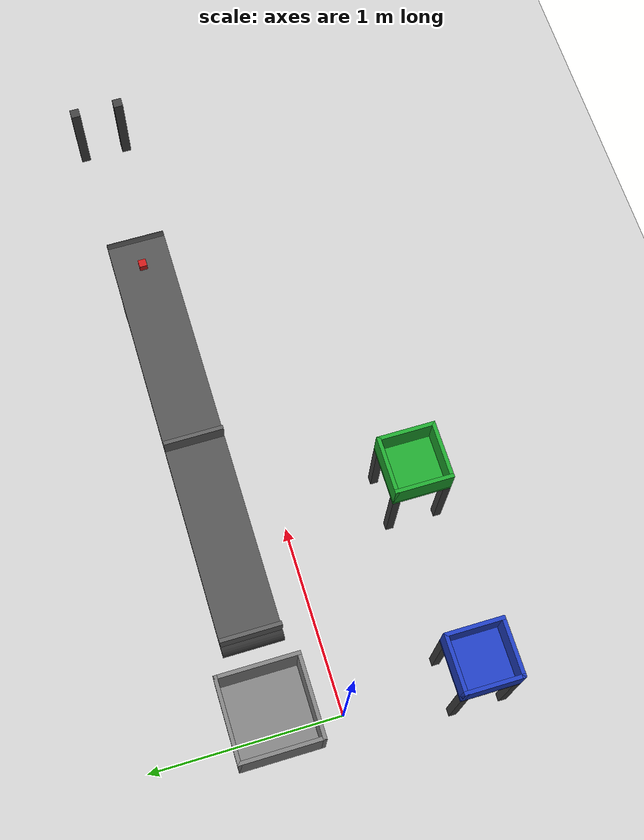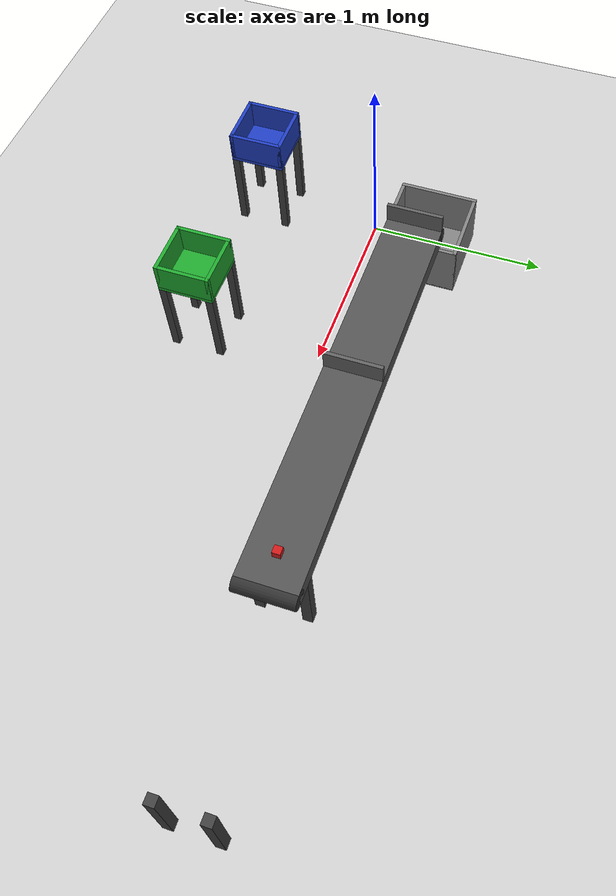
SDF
<?xml version="1.0" ?>
<sdf version="1.8">
  <world name="sorting_cell">
    <physics name="1ms" type="ignition.physics.sim" default="true">
      <max_step_size>0.001</max_step_size>
      <real_time_factor>1.0</real_time_factor>
    </physics>
    <plugin filename="gz-sim-physics-system" name="gz::sim::systems::Physics">
      <gravity>0 0 -9.81</gravity>
    </plugin>
    <plugin filename="gz-sim-scene-broadcaster-system" name="gz::sim::systems::SceneBroadcaster"/>
    <plugin filename="gz-sim-user-commands-system" name="gz::sim::systems::UserCommands"/>
    <plugin filename="gz-sim-contact-system" name="gz::sim::systems::Contact"/>
    <!-- Renders camera sensors. Without this, camera sensors produce no image. -->
    <plugin filename="gz-sim-sensors-system" name="gz::sim::systems::Sensors">
      <render_engine>ogre2</render_engine>
    </plugin>
    <scene>
      <ambient>1.0 1.0 1.0</ambient>
      <background>0.8 0.8 0.8</background>
      <grid>true</grid>
    </scene>
    <light type="directional" name="sun">
      <cast_shadows>true</cast_shadows>
      <pose>0 0 10 0 0 0</pose>
      <diffuse>0.8 0.8 0.8 1</diffuse>
      <specular>0.2 0.2 0.2 1</specular>
      <direction>-0.5 0.1 -0.9</direction>
    </light>
    <model name="ground_plane">
      <static>true</static>
      <link name="link">
        <collision name="collision">
          <geometry><plane><normal>0 0 1</normal><size>100 100</size></plane></geometry>
        </collision>
        <visual name="visual">
          <geometry><plane><normal>0 0 1</normal><size>100 100</size></plane></geometry>
          <material><ambient>0.8 0.8 0.8 1</ambient><diffuse>0.8 0.8 0.8 1</diffuse></material>
        </visual>
      </link>
    </model>

    <model name="belt_track">
      <pose>1.475 0.35 0 0 0 0</pose>
      <static>1</static>
      <link name="base_link">
        <pose>0 0 0.50 0 0 0</pose>
        <collision name="belt_col">
          <geometry><box><size>2.15 0.30 0.10</size></box></geometry>
          <surface><friction><ode><mu>0.7</mu><mu2>150</mu2><fdir1>0 1 0</fdir1></ode></friction></surface>
        </collision>
        <visual name="belt_vis">
          <geometry><box><size>2.15 0.30 0.10</size></box></geometry>
          <!-- Neutral gray (low saturation) so the overhead color cameras only see saturated
               pixels on the workpiece, never the belt. -->
          <material><ambient>0.3 0.3 0.3 1</ambient><diffuse>0.32 0.32 0.32 1</diffuse></material>
        </visual>
        <collision name="roll_a_col">
          <pose>1.075 0 0 -1.5708 0 0</pose>
          <geometry><cylinder><length>0.30</length><radius>0.05</radius></cylinder></geometry>
        </collision>
        <visual name="roll_a_vis">
          <pose>1.075 0 0 -1.5708 0 0</pose>
          <geometry><cylinder><length>0.30</length><radius>0.05</radius></cylinder></geometry>
          <material><ambient>0.2 0.2 0.2 1</ambient><diffuse>0.2 0.2 0.2 1</diffuse></material>
        </visual>
        <collision name="roll_b_col">
          <pose>-1.075 0 0 -1.5708 0 0</pose>
          <geometry><cylinder><length>0.30</length><radius>0.05</radius></cylinder></geometry>
        </collision>
        <visual name="roll_b_vis">
          <pose>-1.075 0 0 -1.5708 0 0</pose>
          <geometry><cylinder><length>0.30</length><radius>0.05</radius></cylinder></geometry>
          <material><ambient>0.2 0.2 0.2 1</ambient><diffuse>0.2 0.2 0.2 1</diffuse></material>
        </visual>
      </link>
      <link name="leg_1"><pose>0.95 0.12 0.225 0 0 0</pose><visual name="v"><geometry><box><size>0.05 0.05 0.45</size></box></geometry><material><ambient>0.25 0.25 0.25 1</ambient><diffuse>0.25 0.25 0.25 1</diffuse></material></visual></link>
      <link name="leg_2"><pose>0.95 -0.12 0.225 0 0 0</pose><visual name="v"><geometry><box><size>0.05 0.05 0.45</size></box></geometry><material><ambient>0.25 0.25 0.25 1</ambient><diffuse>0.25 0.25 0.25 1</diffuse></material></visual></link>
      <link name="leg_3"><pose>2.0 0.12 0.225 0 0 0</pose><visual name="v"><geometry><box><size>0.05 0.05 0.45</size></box></geometry><material><ambient>0.25 0.25 0.25 1</ambient><diffuse>0.25 0.25 0.25 1</diffuse></material></visual></link>
      <link name="leg_4"><pose>2.0 -0.12 0.225 0 0 0</pose><visual name="v"><geometry><box><size>0.05 0.05 0.45</size></box></geometry><material><ambient>0.25 0.25 0.25 1</ambient><diffuse>0.25 0.25 0.25 1</diffuse></material></visual></link>
      <plugin filename="gz-sim-track-controller-system" name="gz::sim::systems::TrackController">
        <link>base_link</link>
      </plugin>
    </model>

    <model name="gate_a">
      <pose>0.40 0.35 0 0 0 0</pose>
      <link name="barrier">
        <pose>0 0 0.605 0 0 0</pose>
        <inertial>
          <mass>0.2</mass>
          <inertia><ixx>0.002</ixx><iyy>0.002</iyy><izz>0.002</izz><ixy>0</ixy><ixz>0</ixz><iyz>0</iyz></inertia>
        </inertial>
        <collision name="collision">
          <geometry><box><size>0.02 0.30 0.10</size></box></geometry>
        </collision>
        <sensor name="gate_contact" type="contact">
          <contact><collision>collision</collision></contact>
          <update_rate>30</update_rate>
          <always_on>true</always_on>
        </sensor>
        <visual name="visual">
          <geometry><box><size>0.02 0.30 0.10</size></box></geometry>
          <!-- Neutral gray: keeps the overhead color camera from ever seeing the gate itself. -->
          <material><ambient>0.35 0.35 0.35 1</ambient><diffuse>0.37 0.37 0.37 1</diffuse></material>
        </visual>
      </link>
      <joint name="lift" type="prismatic">
        <parent>world</parent>
        <child>barrier</child>
        <axis>
          <xyz>0 0 1</xyz>
          <limit><lower>0</lower><upper>0.15</upper><effort>500</effort></limit>
          <dynamics><damping>5.0</damping></dynamics>
        </axis>
      </joint>
      <plugin filename="gz-sim-joint-position-controller-system" name="gz::sim::systems::JointPositionController">
        <joint_name>lift</joint_name>
        <topic>/gate_a/cmd_pos</topic>
        <p_gain>800</p_gain>
        <i_gain>40</i_gain>
        <d_gain>15</d_gain>
        <i_max>50</i_max>
        <i_min>-50</i_min>
        <cmd_max>300</cmd_max>
        <cmd_min>-300</cmd_min>
      </plugin>
    </model>

    <!-- ============ Station B gate (green, upstream, x=1.40) ============ -->
    <model name="gate_b">
      <pose>1.40 0.35 0 0 0 0</pose>
      <link name="barrier">
        <pose>0 0 0.605 0 0 0</pose>
        <inertial>
          <mass>0.2</mass>
          <inertia><ixx>0.002</ixx><iyy>0.002</iyy><izz>0.002</izz><ixy>0</ixy><ixz>0</ixz><iyz>0</iyz></inertia>
        </inertial>
        <collision name="collision">
          <geometry><box><size>0.02 0.30 0.10</size></box></geometry>
        </collision>
        <sensor name="gate_contact" type="contact">
          <contact><collision>collision</collision></contact>
          <update_rate>30</update_rate>
          <always_on>true</always_on>
        </sensor>
        <visual name="visual">
          <geometry><box><size>0.02 0.30 0.10</size></box></geometry>
          <!-- Neutral gray: keeps the overhead color camera from ever seeing the gate itself. -->
          <material><ambient>0.35 0.35 0.35 1</ambient><diffuse>0.37 0.37 0.37 1</diffuse></material>
        </visual>
      </link>
      <joint name="lift" type="prismatic">
        <parent>world</parent>
        <child>barrier</child>
        <axis>
          <xyz>0 0 1</xyz>
          <limit><lower>0</lower><upper>0.15</upper><effort>500</effort></limit>
          <dynamics><damping>5.0</damping></dynamics>
        </axis>
      </joint>
      <plugin filename="gz-sim-joint-position-controller-system" name="gz::sim::systems::JointPositionController">
        <joint_name>lift</joint_name>
        <topic>/gate_b/cmd_pos</topic>
        <p_gain>800</p_gain>
        <i_gain>40</i_gain>
        <d_gain>15</d_gain>
        <i_max>50</i_max>
        <i_min>-50</i_min>
        <cmd_max>300</cmd_max>
        <cmd_min>-300</cmd_min>
      </plugin>
    </model>

    <!-- ============ Overhead cameras (look straight down; pitch +90deg) ============ -->
    <model name="station_a_camera">
      <static>true</static>
      <!-- Centered over where the part rests (just +X of the gate barrier), not on the barrier. -->
      <pose>0.43 0.35 1.30 0 1.5708 0</pose>
      <link name="link">
        <sensor name="cam" type="camera">
          <always_on>1</always_on>
          <update_rate>5</update_rate>
          <topic>station_a_image</topic>
          <camera>
            <horizontal_fov>1.0</horizontal_fov>
            <image><width>192</width><height>144</height><format>R8G8B8</format></image>
            <clip><near>0.1</near><far>5.0</far></clip>
          </camera>
        </sensor>
      </link>
    </model>
    <model name="station_b_camera">
      <static>true</static>
      <!-- Centered over where the part rests (just +X of the gate barrier), not on the barrier. -->
      <pose>1.43 0.35 1.30 0 1.5708 0</pose>
      <link name="link">
        <sensor name="cam" type="camera">
          <always_on>1</always_on>
          <update_rate>5</update_rate>
          <topic>station_b_image</topic>
          <camera>
            <horizontal_fov>1.0</horizontal_fov>
            <image><width>192</width><height>144</height><format>R8G8B8</format></image>
            <clip><near>0.1</near><far>5.0</far></clip>
          </camera>
        </sensor>
      </link>
    </model>

    <!-- ============ Collection boxes (open-top crate on a pedestal, ~belt height) ============ -->
    <!-- BLUE box beside the blue arm (origin), on the -Y side. -->
    <model name="blue_box">
      <static>true</static>
      <pose>0.0 -0.65 0.45 0 0 0</pose>
      <link name="bottom"><pose>0 0 0.01 0 0 0</pose>
        <collision name="c"><geometry><box><size>0.30 0.30 0.02</size></box></geometry></collision>
        <visual name="v"><geometry><box><size>0.30 0.30 0.02</size></box></geometry><material><ambient>0.1 0.2 0.6 1</ambient><diffuse>0.12 0.24 0.75 1</diffuse></material></visual></link>
      <link name="wpx"><pose>0.14 0 0.095 0 0 0</pose><collision name="c"><geometry><box><size>0.02 0.30 0.15</size></box></geometry></collision><visual name="v"><geometry><box><size>0.02 0.30 0.15</size></box></geometry><material><ambient>0.1 0.2 0.6 1</ambient><diffuse>0.12 0.24 0.75 1</diffuse></material></visual></link>
      <link name="wnx"><pose>-0.14 0 0.095 0 0 0</pose><collision name="c"><geometry><box><size>0.02 0.30 0.15</size></box></geometry></collision><visual name="v"><geometry><box><size>0.02 0.30 0.15</size></box></geometry><material><ambient>0.1 0.2 0.6 1</ambient><diffuse>0.12 0.24 0.75 1</diffuse></material></visual></link>
      <link name="wpy"><pose>0 0.14 0.095 0 0 0</pose><collision name="c"><geometry><box><size>0.30 0.02 0.15</size></box></geometry></collision><visual name="v"><geometry><box><size>0.30 0.02 0.15</size></box></geometry><material><ambient>0.1 0.2 0.6 1</ambient><diffuse>0.12 0.24 0.75 1</diffuse></material></visual></link>
      <link name="wny"><pose>0 -0.14 0.095 0 0 0</pose><collision name="c"><geometry><box><size>0.30 0.02 0.15</size></box></geometry></collision><visual name="v"><geometry><box><size>0.30 0.02 0.15</size></box></geometry><material><ambient>0.1 0.2 0.6 1</ambient><diffuse>0.12 0.24 0.75 1</diffuse></material></visual></link>
      <link name="ped_1"><pose>0.13 0.13 -0.225 0 0 0</pose><collision name="c"><geometry><box><size>0.04 0.04 0.45</size></box></geometry></collision><visual name="v"><geometry><box><size>0.04 0.04 0.45</size></box></geometry><material><ambient>0.25 0.25 0.25 1</ambient><diffuse>0.25 0.25 0.25 1</diffuse></material></visual></link>
      <link name="ped_2"><pose>0.13 -0.13 -0.225 0 0 0</pose><collision name="c"><geometry><box><size>0.04 0.04 0.45</size></box></geometry></collision><visual name="v"><geometry><box><size>0.04 0.04 0.45</size></box></geometry><material><ambient>0.25 0.25 0.25 1</ambient><diffuse>0.25 0.25 0.25 1</diffuse></material></visual></link>
      <link name="ped_3"><pose>-0.13 0.13 -0.225 0 0 0</pose><collision name="c"><geometry><box><size>0.04 0.04 0.45</size></box></geometry></collision><visual name="v"><geometry><box><size>0.04 0.04 0.45</size></box></geometry><material><ambient>0.25 0.25 0.25 1</ambient><diffuse>0.25 0.25 0.25 1</diffuse></material></visual></link>
      <link name="ped_4"><pose>-0.13 -0.13 -0.225 0 0 0</pose><collision name="c"><geometry><box><size>0.04 0.04 0.45</size></box></geometry></collision><visual name="v"><geometry><box><size>0.04 0.04 0.45</size></box></geometry><material><ambient>0.25 0.25 0.25 1</ambient><diffuse>0.25 0.25 0.25 1</diffuse></material></visual></link>
    </model>
    <!-- GREEN box beside the green arm (x=1.0), on the -Y side. -->
    <model name="green_box">
      <static>true</static>
      <pose>1.0 -0.65 0.45 0 0 0</pose>
      <link name="bottom"><pose>0 0 0.01 0 0 0</pose>
        <collision name="c"><geometry><box><size>0.30 0.30 0.02</size></box></geometry></collision>
        <visual name="v"><geometry><box><size>0.30 0.30 0.02</size></box></geometry><material><ambient>0.1 0.5 0.15 1</ambient><diffuse>0.12 0.65 0.18 1</diffuse></material></visual></link>
      <link name="wpx"><pose>0.14 0 0.095 0 0 0</pose><collision name="c"><geometry><box><size>0.02 0.30 0.15</size></box></geometry></collision><visual name="v"><geometry><box><size>0.02 0.30 0.15</size></box></geometry><material><ambient>0.1 0.5 0.15 1</ambient><diffuse>0.12 0.65 0.18 1</diffuse></material></visual></link>
      <link name="wnx"><pose>-0.14 0 0.095 0 0 0</pose><collision name="c"><geometry><box><size>0.02 0.30 0.15</size></box></geometry></collision><visual name="v"><geometry><box><size>0.02 0.30 0.15</size></box></geometry><material><ambient>0.1 0.5 0.15 1</ambient><diffuse>0.12 0.65 0.18 1</diffuse></material></visual></link>
      <link name="wpy"><pose>0 0.14 0.095 0 0 0</pose><collision name="c"><geometry><box><size>0.30 0.02 0.15</size></box></geometry></collision><visual name="v"><geometry><box><size>0.30 0.02 0.15</size></box></geometry><material><ambient>0.1 0.5 0.15 1</ambient><diffuse>0.12 0.65 0.18 1</diffuse></material></visual></link>
      <link name="wny"><pose>0 -0.14 0.095 0 0 0</pose><collision name="c"><geometry><box><size>0.30 0.02 0.15</size></box></geometry></collision><visual name="v"><geometry><box><size>0.30 0.02 0.15</size></box></geometry><material><ambient>0.1 0.5 0.15 1</ambient><diffuse>0.12 0.65 0.18 1</diffuse></material></visual></link>
      <link name="ped_1"><pose>0.13 0.13 -0.225 0 0 0</pose><collision name="c"><geometry><box><size>0.04 0.04 0.45</size></box></geometry></collision><visual name="v"><geometry><box><size>0.04 0.04 0.45</size></box></geometry><material><ambient>0.25 0.25 0.25 1</ambient><diffuse>0.25 0.25 0.25 1</diffuse></material></visual></link>
      <link name="ped_2"><pose>0.13 -0.13 -0.225 0 0 0</pose><collision name="c"><geometry><box><size>0.04 0.04 0.45</size></box></geometry></collision><visual name="v"><geometry><box><size>0.04 0.04 0.45</size></box></geometry><material><ambient>0.25 0.25 0.25 1</ambient><diffuse>0.25 0.25 0.25 1</diffuse></material></visual></link>
      <link name="ped_3"><pose>-0.13 0.13 -0.225 0 0 0</pose><collision name="c"><geometry><box><size>0.04 0.04 0.45</size></box></geometry></collision><visual name="v"><geometry><box><size>0.04 0.04 0.45</size></box></geometry><material><ambient>0.25 0.25 0.25 1</ambient><diffuse>0.25 0.25 0.25 1</diffuse></material></visual></link>
      <link name="ped_4"><pose>-0.13 -0.13 -0.225 0 0 0</pose><collision name="c"><geometry><box><size>0.04 0.04 0.45</size></box></geometry></collision><visual name="v"><geometry><box><size>0.04 0.04 0.45</size></box></geometry><material><ambient>0.25 0.25 0.25 1</ambient><diffuse>0.25 0.25 0.25 1</diffuse></material></visual></link>
    </model>

    <!-- ============ Unsorted bin: floor crate past the belt low-X end ============
         Catches parts that fall off the belt when gate A opens for a non-blue part. -->
    <model name="unsorted_bin">
      <static>true</static>
      <pose>0.10 0.35 0 0 0 0</pose>
      <link name="bottom"><pose>0 0 0.02 0 0 0</pose>
        <collision name="c"><geometry><box><size>0.44 0.44 0.04</size></box></geometry></collision>
        <visual name="v"><geometry><box><size>0.44 0.44 0.04</size></box></geometry><material><ambient>0.5 0.5 0.5 1</ambient><diffuse>0.5 0.5 0.5 1</diffuse></material></visual></link>
      <link name="wpx"><pose>0.21 0 0.15 0 0 0</pose><collision name="c"><geometry><box><size>0.02 0.44 0.30</size></box></geometry></collision><visual name="v"><geometry><box><size>0.02 0.44 0.30</size></box></geometry><material><ambient>0.5 0.5 0.5 1</ambient><diffuse>0.5 0.5 0.5 1</diffuse></material></visual></link>
      <link name="wnx"><pose>-0.21 0 0.15 0 0 0</pose><collision name="c"><geometry><box><size>0.02 0.44 0.30</size></box></geometry></collision><visual name="v"><geometry><box><size>0.02 0.44 0.30</size></box></geometry><material><ambient>0.5 0.5 0.5 1</ambient><diffuse>0.5 0.5 0.5 1</diffuse></material></visual></link>
      <link name="wpy"><pose>0 0.21 0.15 0 0 0</pose><collision name="c"><geometry><box><size>0.44 0.02 0.30</size></box></geometry></collision><visual name="v"><geometry><box><size>0.44 0.02 0.30</size></box></geometry><material><ambient>0.5 0.5 0.5 1</ambient><diffuse>0.5 0.5 0.5 1</diffuse></material></visual></link>
      <link name="wny"><pose>0 -0.21 0.15 0 0 0</pose><collision name="c"><geometry><box><size>0.44 0.02 0.30</size></box></geometry></collision><visual name="v"><geometry><box><size>0.44 0.02 0.30</size></box></geometry><material><ambient>0.5 0.5 0.5 1</ambient><diffuse>0.5 0.5 0.5 1</diffuse></material></visual></link>
    </model>

    <!-- One workpiece at the belt feed (high-X) end. Default red; the orchestrator (M5)
         removes/respawns it with a random color each cycle. -->
    <model name="workpiece_1">
      <pose>2.40 0.35 0.58 0 0 0</pose>
      <link name="link">
        <inertial>
          <mass>0.05</mass>
          <inertia><ixx>0.00002</ixx><iyy>0.00002</iyy><izz>0.00002</izz><ixy>0</ixy><ixz>0</ixz><iyz>0</iyz></inertia>
        </inertial>
        <collision name="collision">
          <geometry><box><size>0.04 0.04 0.04</size></box></geometry>
          <surface><friction><ode><mu>50</mu><mu2>50</mu2></ode></friction></surface>
        </collision>
        <visual name="visual">
          <geometry><box><size>0.04 0.04 0.04</size></box></geometry>
          <material><ambient>0.8 0.1 0.1 1</ambient><diffuse>0.8 0.1 0.1 1</diffuse></material>
        </visual>
      </link>
    </model>
  </world>
</sdf>
